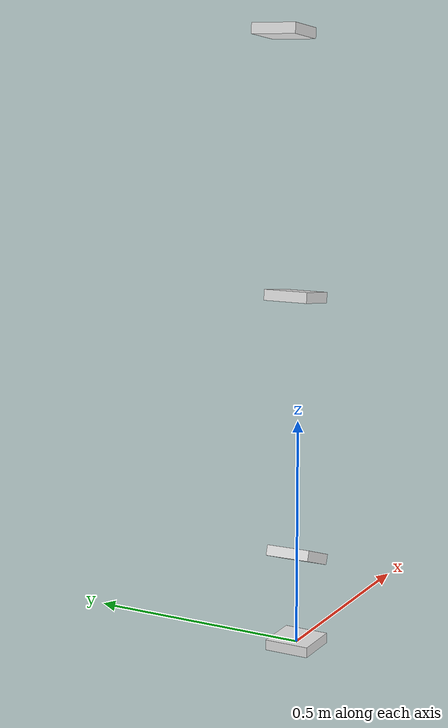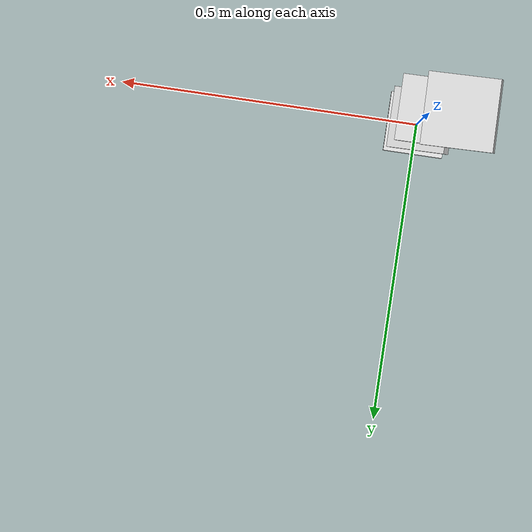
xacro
<?xml version="1.0"?>
<!--
 Copyright (c) Microsoft Corporation. All rights reserved.
 Licensed under the MIT License.
 -->

<robot name="azure-kinects" xmlns:xacro="http://www.ros.org/wiki/xacro">

  <material name="white">
    <color rgba="0.9 0.9 0.9 1" />
  </material>

  <link name="/H_camera_base">
    <visual>
      <origin xyz="0. 0. 0." />
      <geometry>
        <box size="0.0994 0.0996 0.023" />
      </geometry>
      <material name="white" />
    </visual>
  </link>

  <link name="/M_camera_base">
    <visual>
      <origin xyz="0. 0. 0." />
      <geometry>
        <box size="0.0994 0.0996 0.023" />
      </geometry>
      <material name="white" />
    </visual>
  </link>

  <link name="/L_camera_base">
    <visual>
      <origin xyz="0. 0. 0." />
      <geometry>
        <box size="0.0994 0.0996 0.023" />
      </geometry>
      <material name="white" />
    </visual>
  </link>

  <link name="/base_frame">
    <visual>
      <origin xyz="0. 0. 0." />
      <geometry>
        <box size="0.0994 0.0996 0.023" />
      </geometry>
      <material name="white" />
    </visual>
  </link>

<!--
  origin是 child 相对于 parent 的初始位置和方向
  child 坐标系下的点，可以通过左乘的方式来变换到 parent 下
  箭头由 child 指向 parent
 -->

  <joint name="base_to_cameraH_tf" type="fixed">
    <parent link="/M_camera_base" />
    <child link="/H_camera_base" />
<origin xyz="-0.105839 0.011434 0.544613" rpy="3.129876 -3.139335 -3.127100" />
  </joint>

  <joint name="base_to_cameraM_tf" type="fixed">
    <parent link="/L_camera_base" />
    <child link="/M_camera_base" />
<origin xyz="-0.200750 -0.000253 0.534473" rpy="3.140458 -2.933073 3.140895" />
  </joint>

  <joint name="base_to_cameraL_tf" type="fixed">
    <parent link="/base_frame" />
    <child link="/L_camera_base" />
<origin xyz=" 0 0 0.2 " rpy="3.12277 2.77351  3.1396" />
  </joint>

</robot>
